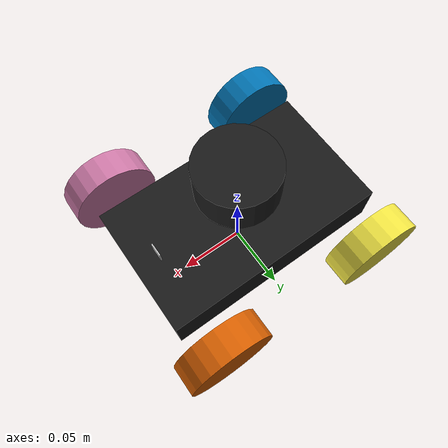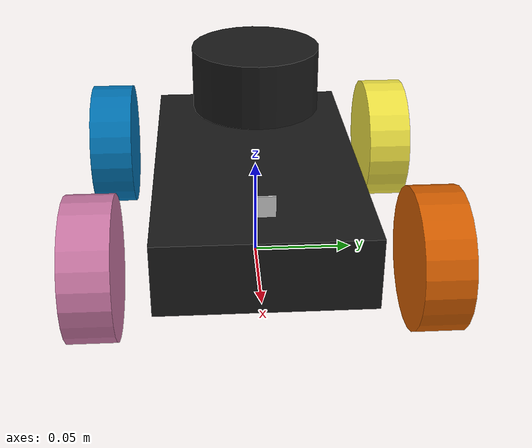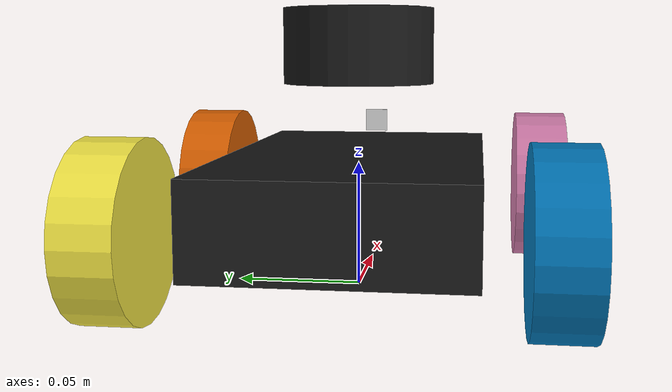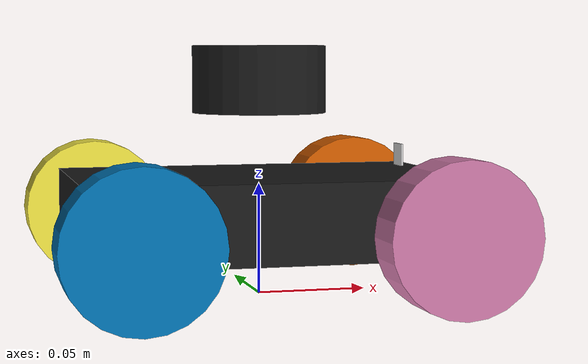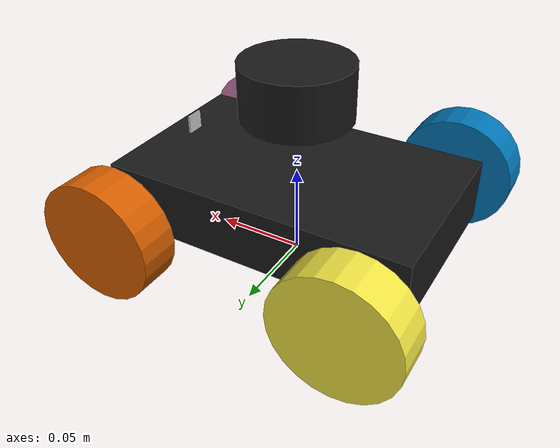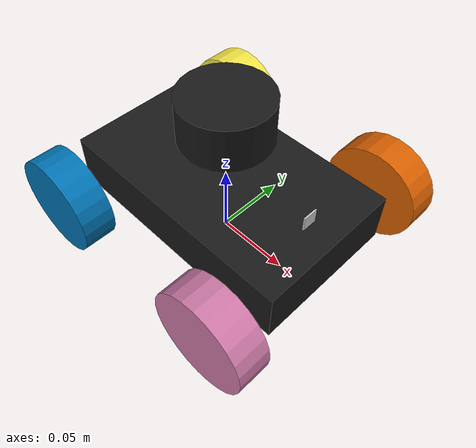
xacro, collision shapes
<?xml version="1.0"?>
<robot name="robot" xmlns:xacro="http://www.ros.org/wiki/xacro">

    <xacro:include filename="robot_core.xacro" />

    <xacro:include filename="robot_control.xacro" />

    <xacro:include filename="robot_gazebo.xacro" />

</robot>

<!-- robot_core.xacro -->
<robot name="robot" xmlns:xacro="http://www.ros.org/wiki/xacro">

    <!-- COLORS -->

    <material name="white">
        <color rgba="0.8 0.8 0.8 1"/>
    </material>

    <material name="orange">
        <color rgba="1 0.3 0.1 1"/>
    </material>

    <material name="black">
        <color rgba="0.1 0.1 0.1 1"/>
    </material>

    <material name="green">
        <color rgba="0.32 0.545 0.298 1"/>
    </material>

    <!-- BASE LINK -->

    <link name="base_link" />

    <!-- COMPONENTS -->

    <xacro:include filename="components/chassis.xacro" />
    <xacro:include filename="components/wheels.xacro" />
    <xacro:include filename="components/camera.xacro" />
    <xacro:include filename="components/lidar.xacro" />

</robot>

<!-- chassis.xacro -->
<robot name="robot" xmlns:xacro="http://www.ros.org/wiki/xacro">

    <xacro:include filename="inertia_macros.xacro" />

    <xacro:property name="chassis_length" value="0.17" />
    <xacro:property name="chassis_width" value="0.1"/>
    <xacro:property name="chassis_height" value="0.035"/>
    <xacro:property name="chassis_mass" value="1.5"/>
    <xacro:property name="chassis_offset_z" value="0.037"/>

    <xacro:property name="cpu_length" value="0.085" />
    <xacro:property name="cpu_width" value="0.003"/>
    <xacro:property name="cpu_height" value="0.02"/>
    <xacro:property name="cpu_mass" value="0.1"/>

    <!-- CHASSIS LINK -->

    <joint name="chassis_joint" type="fixed">
        <parent link="base_link"/>
        <child link="chassis"/>
        <origin xyz="0 0 ${chassis_offset_z}"/>
    </joint>

    <link name="chassis">
        <visual>
            <origin xyz="0 0 0"/>
            <geometry>
                <mesh filename="package://vision_bot/description/meshes/robot_base_link.stl"/>
            </geometry>
            <material name="black" />
        </visual>
        <collision>
            <origin xyz="0 0 0" />
            <geometry>
                <box size="${chassis_length} ${chassis_width} ${chassis_height}" />
            </geometry>
            <material name="black" />
        </collision>
        <xacro:inertial_box mass="${chassis_mass}" x="${chassis_length}" y="${chassis_width}" z="${chassis_height}">
            <origin xyz="0 0 0" rpy="0 0 0"/>
        </xacro:inertial_box>
    </link>

    <!-- CPU LINK -->

    <joint name="cpu_joint" type="fixed">
        <parent link="chassis" />
        <child link="cpu_link" />
        <origin xyz="0 0 ${(cpu_height / 2) - 0.005}" rpy="${pi/2} 0 0"/>
    </joint>

    <link name="cpu_link">
        <visual>
            <origin xyz="0 0 0"/>
            <geometry>
                <mesh filename="package://vision_bot/description/meshes/rpi5_link.stl"/>
            </geometry>
            <material name="green" />
        </visual>
        <collision>
            <geometry>
                <box size="${cpu_length} ${cpu_width} ${cpu_height}"/>
            </geometry>
            <material name="green" />
        </collision>
        <xacro:inertial_box mass="${cpu_mass}" x="${cpu_length}" y="${cpu_width}" z="${cpu_height}">
            <origin xyz="0 0 0.0" rpy="0 0 0" />
        </xacro:inertial_box>
    </link>
</robot>

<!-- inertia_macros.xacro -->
<robot xmlns:xacro="http://www.ros.org/wiki/xacro">

    <xacro:macro name="inertial_sphere" params="mass radius *origin">
        <inertial>
            <xacro:insert_block name="origin"/>
            <mass value="${mass}" />
            <inertia ixx="${(2/5) * mass * (radius*radius)}" ixy="0.0" ixz="0.0"
                    iyy="${(2/5) * mass * (radius*radius)}" iyz="0.0"
                    izz="${(2/5) * mass * (radius*radius)}" />
        </inertial>
    </xacro:macro>

    <xacro:macro name="inertial_box" params="mass x y z *origin">
        <inertial>
            <xacro:insert_block name="origin"/>
            <mass value="${mass}" />
            <inertia ixx="${(1/12) * mass * (y*y+z*z)}" ixy="0.0" ixz="0.0"
                    iyy="${(1/12) * mass * (x*x+z*z)}" iyz="0.0"
                    izz="${(1/12) * mass * (x*x+y*y)}" />
        </inertial>
    </xacro:macro>

    <xacro:macro name="inertial_cylinder" params="mass length radius *origin">
        <inertial>
            <xacro:insert_block name="origin"/>
            <mass value="${mass}" />
            <inertia ixx="${(1/12) * mass * (3*radius*radius + length*length)}" ixy="0.0" ixz="0.0"
                    iyy="${(1/12) * mass * (3*radius*radius + length*length)}" iyz="0.0"
                    izz="${(1/2) * mass * (radius*radius)}" />
        </inertial>
    </xacro:macro>

    <xacro:macro name="inertial_lidar">
        <inertial>
        <origin xyz="-0.011945780406062 -0.000381929217680526 -0.0170649378129477" rpy="0 0 0" />
        <mass value="0.073084435549317" />
        <inertia ixx="1.96074931730795E-05"
                 ixy="-3.62091076640009E-07"
                 ixz="4.28230084046735E-07"
                 iyy="2.40983835136327E-05"
                 iyz="1.50180909250652E-08"
                 izz="4.14184164228595E-05" />
    </inertial>
    </xacro:macro>
</robot>

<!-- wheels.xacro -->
<robot name="robot" xmlns:xacro="http://www.ros.org/wiki/xacro">

    <xacro:include filename="inertia_macros.xacro" />

    <xacro:property name="wheel_radius" value="0.033"/>
    <xacro:property name="wheel_length" value="0.022"/>
    <xacro:property name="wheel_mass" value="0.1"/>

    <xacro:property name="chassis_length" value="0.165" />
    <xacro:property name="chassis_width" value="0.1"/>
    <xacro:property name="chassis_offset_z" value="0.037"/>

    <xacro:property name="front_wheel_offset_x" value="${(chassis_length/2) - (wheel_radius/2)}"/>
    <xacro:property name="rear_wheel_offset_x" value="${-((chassis_length/2) - (wheel_radius/2))}"/>
    <xacro:property name="wheel_offset_y" value="${(chassis_width/2) + (wheel_length/2) + 0.015}"/>
    <xacro:property name="wheel_offset_z" value="${wheel_radius - chassis_offset_z}"/>

    <!-- LEFT REAR WHEEL LINK -->

    <joint name="rear_left_wheel_joint" type="continuous">
        <parent link="chassis"/>
        <child link="rear_left_wheel"/>
        <origin xyz="${rear_wheel_offset_x} ${wheel_offset_y} ${wheel_offset_z}" rpy="-${pi/2} 0 0"/>
        <axis xyz="0 0 1"/>
    </joint>

    <link name="rear_left_wheel">
        <collision>
            <geometry>
                <cylinder radius="${wheel_radius}" length="${wheel_length}"/>
            </geometry>
            <material name="orange"/>
        </collision>
        <xacro:inertial_cylinder mass="${wheel_mass}" length="${wheel_length}" radius="${wheel_radius}">
            <origin xyz="0 0 0" rpy="0 0 0"/>
        </xacro:inertial_cylinder>
    </link>

    <!-- RIGHT REAR WHEEL LINK -->

    <joint name="rear_right_wheel_joint" type="continuous">
        <parent link="chassis"/>
        <child link="rear_right_wheel"/>
        <origin xyz="${rear_wheel_offset_x} -${wheel_offset_y} ${wheel_offset_z}" rpy="${pi/2} 0 0"/>
        <axis xyz="0 0 -1"/>
    </joint>

    <link name="rear_right_wheel">
        <collision>
            <geometry>
                <cylinder radius="${wheel_radius}" length="${wheel_length}"/>
            </geometry>
            <material name="orange"/>
        </collision>
        <xacro:inertial_cylinder mass="${wheel_mass}" length="${wheel_length}" radius="${wheel_radius}">
            <origin xyz="0 0 0" rpy="0 0 0"/>
        </xacro:inertial_cylinder>
    </link>

    <!-- LEFT FRONT WHEEL LINK -->

    <joint name="front_left_wheel_joint" type="continuous">
        <parent link="chassis"/>
        <child link="front_left_wheel"/>
        <origin xyz="${front_wheel_offset_x} ${wheel_offset_y} ${wheel_offset_z}" rpy="-${pi/2} 0 0"/>
        <axis xyz="0 0 1"/>
    </joint>

    <link name="front_left_wheel">
        <collision>
            <geometry>
                <cylinder radius="${wheel_radius}" length="${wheel_length}"/>
            </geometry>
            <material name="orange"/>
        </collision>
        <xacro:inertial_cylinder mass="${wheel_mass}" length="${wheel_length}" radius="${wheel_radius}">
            <origin xyz="0 0 0" rpy="0 0 0"/>
        </xacro:inertial_cylinder>
    </link>

    <!-- RIGHT FRONT WHEEL LINK -->

    <joint name="front_right_wheel_joint" type="continuous">
        <parent link="chassis"/>
        <child link="front_right_wheel"/>
        <origin xyz="${front_wheel_offset_x} -${wheel_offset_y} ${wheel_offset_z}" rpy="${pi/2} 0 0"/>
        <axis xyz="0 0 -1"/>
    </joint>

    <link name="front_right_wheel">
        <collision>
            <geometry>
                <cylinder radius="${wheel_radius}" length="${wheel_length}"/>
            </geometry>
            <material name="orange"/>
        </collision>
        <xacro:inertial_cylinder mass="${wheel_mass}" length="${wheel_length}" radius="${wheel_radius}">
            <origin xyz="0 0 0" rpy="0 0 0"/>
        </xacro:inertial_cylinder>
    </link>

</robot>

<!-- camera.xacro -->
<robot name="robot" xmlns:xacro="http://www.ros.org/wiki/xacro">

    <xacro:include filename="inertia_macros.xacro" />

    <xacro:property name="camera_neck_length" value="0.001" />
    <xacro:property name="camera_neck_width" value="0.01"/>
    <xacro:property name="camera_neck_height" value="0.01"/>

    <xacro:property name="camera_height" value="0.01"/>

    <xacro:property name="chassis_length" value="0.17" />
    <xacro:property name="chassis_height" value="0.035"/>

    <xacro:property name="camera_neck_offset_x" value="${(chassis_length/3) + 0.01}" />
    <xacro:property name="camera_neck_offset_z" value="${chassis_height + (camera_neck_height / 2) - 0.015}" />

    <xacro:property name="camera_offset_z" value="${(camera_neck_height/2) + (camera_height / 2)}" />

    <joint name="camera_neck_joint" type="fixed">
        <parent link="chassis"/>
        <child link="camera_neck_link"/>
        <origin xyz="${camera_neck_offset_x} 0 ${camera_neck_offset_z}" rpy="0 0 0"/>
    </joint>

    <link name="camera_neck_link">
        <visual>
            <geometry>
                <box size="${camera_neck_length} ${camera_neck_width} ${camera_neck_height}"/>
            </geometry>
            <material name="white"/>
        </visual>
        <collision>
            <origin xyz="0 0 0" />
            <geometry>
                <box size="${camera_neck_length} ${camera_neck_width} ${camera_neck_height}"/>
            </geometry>
            <material name="white"/>
        </collision>
        <xacro:inertial_box mass="0.1" x="${camera_neck_length}" y="${camera_neck_width}" z="${camera_neck_height}">
            <origin xyz="0 0 0" rpy="0 0 0"/>
        </xacro:inertial_box>
    </link>

    <joint name="camera_joint" type="fixed">
        <parent link="camera_neck_link"/>
        <child link="camera_link"/>
        <origin xyz="0.0075 0 ${camera_offset_z}" rpy="0 ${pi/2} 0"/>
    </joint>

    <link name="camera_link">
        <visual>
            <origin xyz="0 0 0"/>
            <geometry>
                <mesh filename="package://vision_bot/description/meshes/rpi_camera_link.stl"/>
            </geometry>
            <material name="green" />
        </visual>
    </link>

    <joint name="camera_optical_joint" type="fixed">
        <parent link="camera_link"/>
        <child link="camera_link_optical"/>
        <origin xyz="0 0 0" rpy="-${pi/2} 0 -${pi/2}"/>
    </joint>

    <link name="camera_link_optical"></link>

    <gazebo reference="camera_link">
        <sensor name="camera" type="camera">
            <update_rate>30</update_rate>
            <topic>camera/image_raw</topic>
            <camera>
                <camera_info_topic>camera/camera_info</camera_info_topic>
                <horizontal_fov>2.09</horizontal_fov>
                <image>
                    <format>R8G8B8</format>
                    <width>1280</width>
                    <height>720</height>
                </image>
                <clip>
                    <near>0.05</near>
                    <far>20.0</far>
                </clip>
            </camera>

            <always_on>true</always_on>
            <visualize>true</visualize>
        </sensor>
    </gazebo>

</robot>

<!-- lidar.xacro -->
<robot name="robot" xmlns:xacro="http://www.ros.org/wiki/xacro">
  <xacro:property name="chassis_height" value="0.035" />
  <xacro:property name="lidar_height" value="0.025" />
  <xacro:property name="lidar_offset_z" value="${chassis_height + lidar_height}" />
  <link name="lidar_link">
    <visual>
      <origin xyz="0 0 0" rpy="0 0 0" />
      <geometry>
        <mesh filename="package://visionbot_description/description/meshes/laser_link.stl" />
      </geometry>
      <material name="black" />
    </visual>
    <collision>
      <origin rpy="0 0 0" xyz="0 0 0" />
      <geometry>
        <cylinder length="0.03" radius="0.03" />
      </geometry>
    </collision>
    <xacro:inertial_lidar />
  </link>
  <joint name="lidar_joint" type="fixed">
    <parent link="chassis" />
    <child link="lidar_link" />
    <origin xyz="0 0 ${lidar_offset_z}" rpy="0 0 ${pi}" />
  </joint>
</robot>
